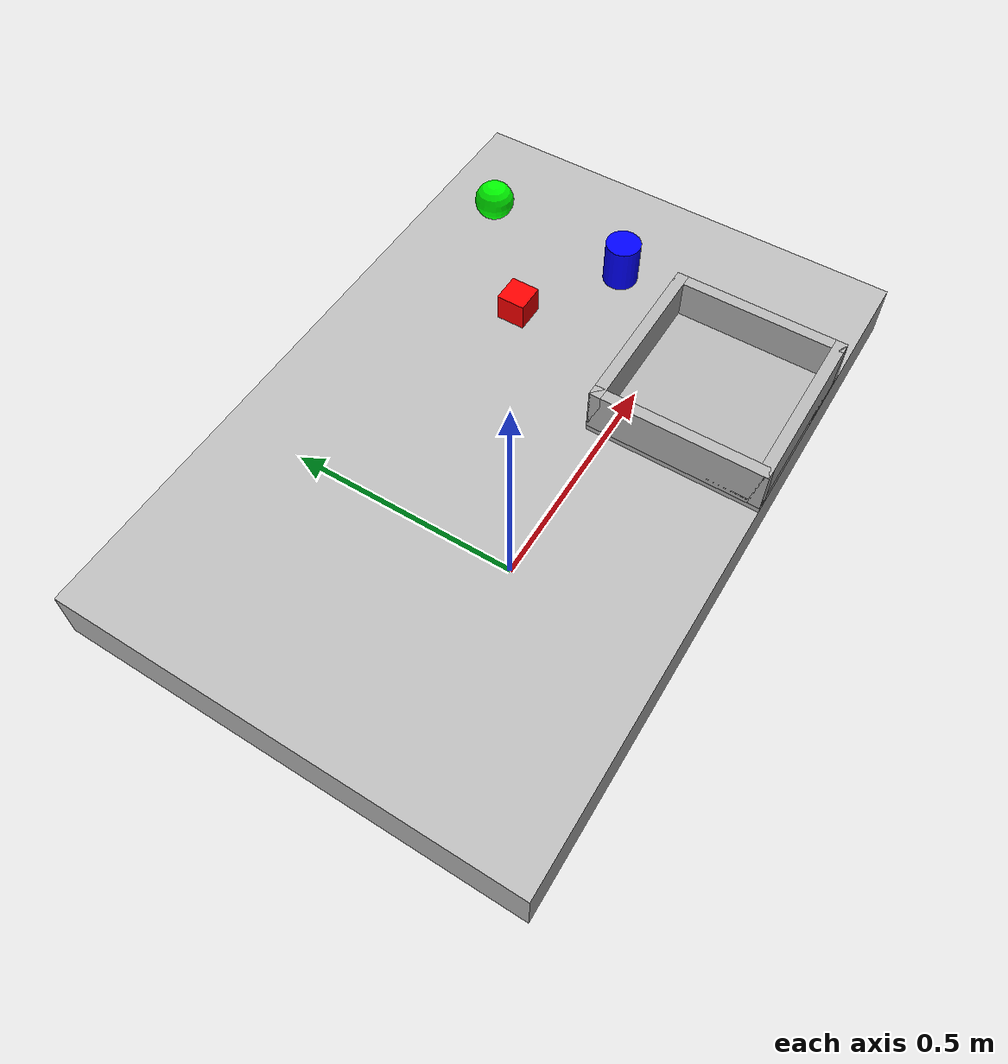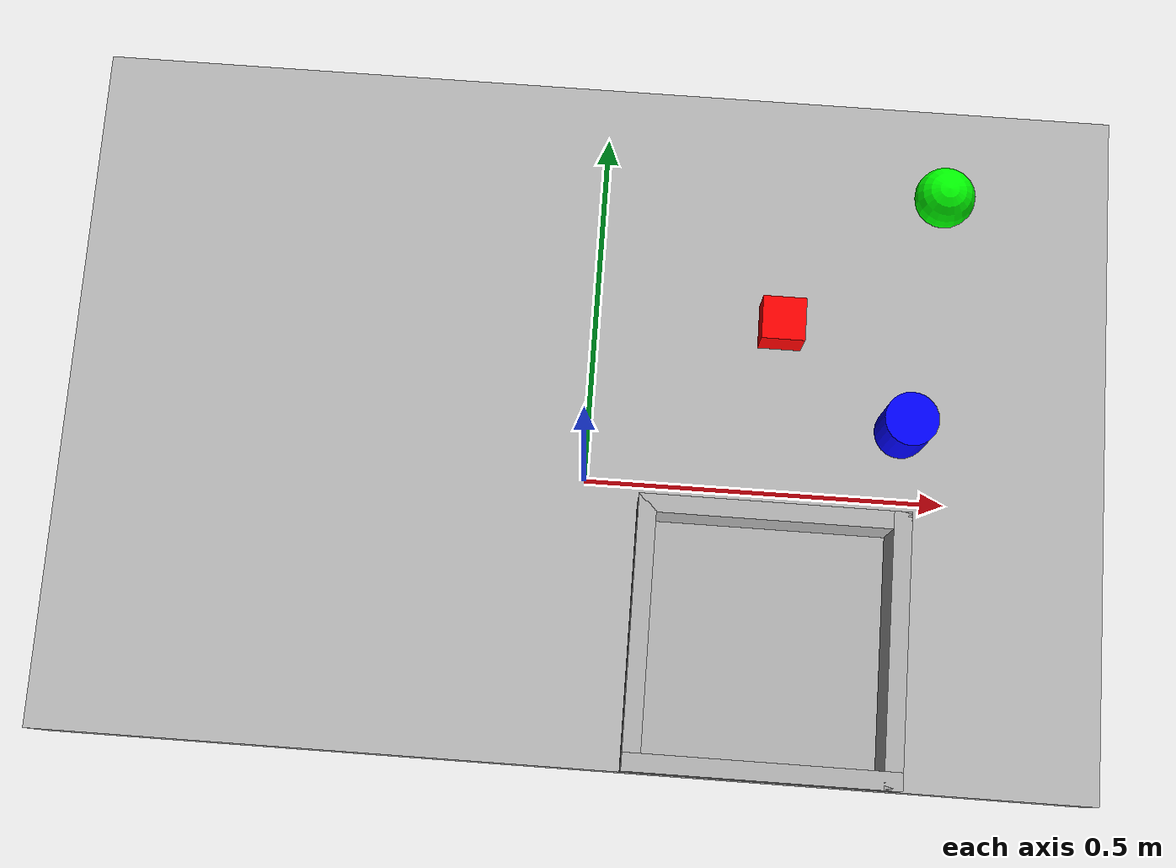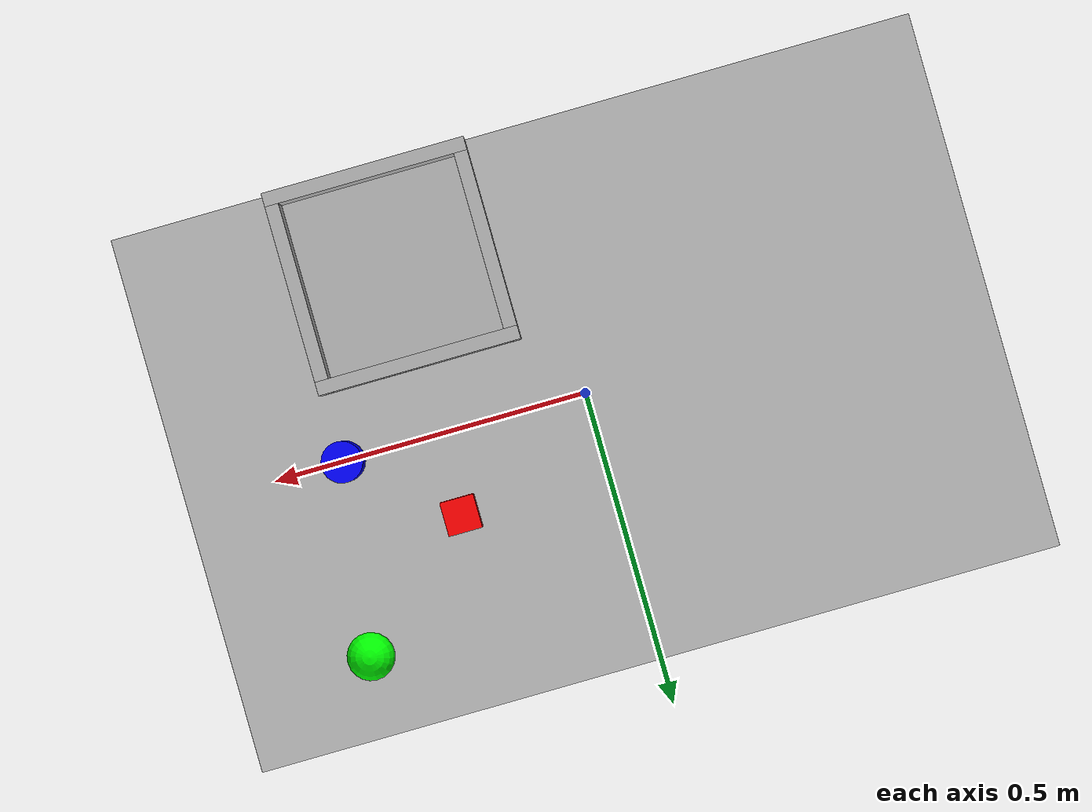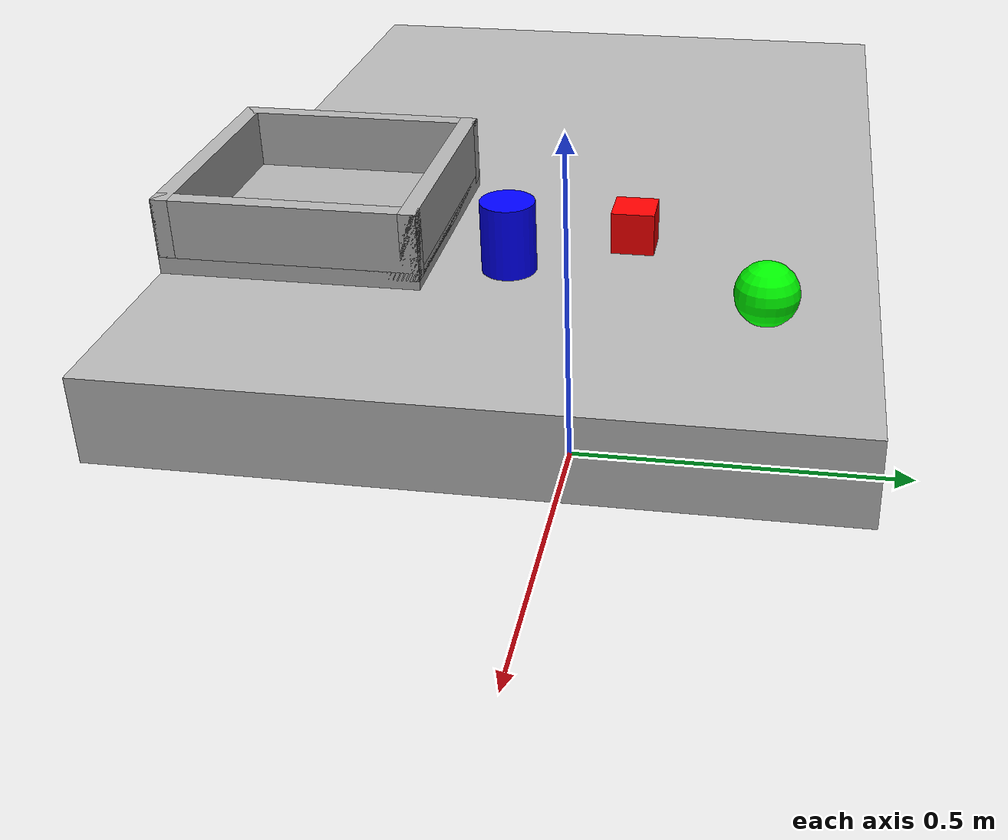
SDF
<?xml version="1.0" ?>
<sdf version="1.9">
  <world name="xh_p0_pick_place">
    <physics name="default_physics" type="bullet">
      <max_step_size>0.001</max_step_size>
      <real_time_factor>1.0</real_time_factor>
    </physics>
    <!-- Explicit systems are required for a server-only Harmonic run to expose
         physics, spawn services, contacts, the scene graph, and RGB-D output. -->
    <plugin name="gz::sim::systems::Physics" filename="gz-sim-physics-system">
      <engine><filename>gz-physics-bullet-featherstone-plugin</filename></engine>
    </plugin>
    <plugin name="gz::sim::systems::UserCommands" filename="gz-sim-user-commands-system"/>
    <plugin name="gz::sim::systems::SceneBroadcaster" filename="gz-sim-scene-broadcaster-system"/>
    <plugin name="gz::sim::systems::Contact" filename="gz-sim-contact-system"/>
    <plugin name="gz::sim::systems::Sensors" filename="gz-sim-sensors-system">
      <render_engine>ogre2</render_engine>
    </plugin>
    <gravity>0 0 -9.81</gravity>
    <light type="directional" name="sun">
      <pose>0 0 10 0 0 0</pose><cast_shadows>true</cast_shadows>
      <diffuse>0.8 0.8 0.8 1</diffuse><specular>0.2 0.2 0.2 1</specular>
      <direction>-0.5 0.1 -0.9</direction>
    </light>
    <model name="work_table">
      <static>true</static>
      <link name="table_link">
        <pose>0 0 0.4 0 0 0</pose>
        <collision name="collision"><geometry><box><size>1.2 0.8 0.1</size></box></geometry></collision>
        <visual name="visual"><geometry><box><size>1.2 0.8 0.1</size></box></geometry></visual>
      </link>
    </model>
    <!-- The M0 visual-only Panda stub was removed for M1A. The only robot
         rendered in this world is the controller-backed model spawned by launch. -->
    <model name="camera_fixture">
      <static>true</static>
      <link name="camera_rgbd">
        <pose>0.7 0 0.62 0 0.55 3.14</pose>
        <sensor name="front_rgbd" type="rgbd_camera">
          <always_on>1</always_on><update_rate>15</update_rate><topic>/xh/camera/rgbd</topic>
          <camera><horizontal_fov>1.047</horizontal_fov><image><width>320</width><height>240</height><format>R8G8B8</format></image><clip><near>0.1</near><far>4.0</far></clip></camera>
        </sensor>
      </link>
    </model>
    <model name="object_red_cube">
      <!-- Center is one half-side above the 0.45 m table top. This matches
           the MoveIt planning-scene object used by S0/S1. -->
      <pose>0.22 0.12 0.475 0 0 0</pose>
      <link name="link"><inertial><mass>0.08</mass></inertial><collision name="collision"><geometry><box><size>0.05 0.05 0.05</size></box></geometry></collision><visual name="visual"><geometry><box><size>0.05 0.05 0.05</size></box></geometry><material><diffuse>1 0 0 1</diffuse></material></visual><sensor name="red_cube_contact" type="contact"><always_on>1</always_on><update_rate>30</update_rate><topic>/xh/supervision/red_cube_contacts</topic><contact><collision>collision</collision></contact></sensor></link>
    </model>
    <model name="object_blue_cylinder">
      <pose>0.36 0.00 0.52 0 0 0</pose>
      <link name="link"><inertial><mass>0.06</mass></inertial><collision name="collision"><geometry><cylinder><radius>0.03</radius><length>0.08</length></cylinder></geometry></collision><visual name="visual"><geometry><cylinder><radius>0.03</radius><length>0.08</length></cylinder></geometry><material><diffuse>0 0 1 1</diffuse></material></visual></link>
    </model>
    <model name="object_green_sphere">
      <!-- The approved bin relocation would otherwise start with this
           non-task prop inside bin_a; keep it as a separate tabletop prop. -->
      <pose>0.40 0.28 0.49 0 0 0</pose>
      <link name="link"><inertial><mass>0.04</mass></inertial><collision name="collision"><geometry><sphere><radius>0.035</radius></sphere></geometry></collision><visual name="visual"><geometry><sphere><radius>0.035</radius></sphere></geometry><material><diffuse>0 1 0 1</diffuse></material></visual></link>
    </model>
    <model name="bin_a">
      <static>true</static><pose>0.217366447885 -0.249990627453 0.45 0 0 0</pose>
      <link name="link">
        <collision name="floor_collision"><pose>0 0 0.01 0 0 0</pose><geometry><box><size>0.30 0.30 0.02</size></box></geometry></collision>
        <visual name="floor_visual"><pose>0 0 0.01 0 0 0</pose><geometry><box><size>0.30 0.30 0.02</size></box></geometry><material><diffuse>0.7 0.7 0.7 1</diffuse></material></visual>
        <collision name="left_wall_collision"><pose>0 0.14 0.05 0 0 0</pose><geometry><box><size>0.30 0.02 0.08</size></box></geometry></collision>
        <collision name="right_wall_collision"><pose>0 -0.14 0.05 0 0 0</pose><geometry><box><size>0.30 0.02 0.08</size></box></geometry></collision>
        <collision name="front_wall_collision"><pose>0.14 0 0.05 0 0 0</pose><geometry><box><size>0.02 0.30 0.08</size></box></geometry></collision>
        <collision name="back_wall_collision"><pose>-0.14 0 0.05 0 0 0</pose><geometry><box><size>0.02 0.30 0.08</size></box></geometry></collision>
        <visual name="left_wall_visual"><pose>0 0.14 0.05 0 0 0</pose><geometry><box><size>0.30 0.02 0.08</size></box></geometry><material><diffuse>0.7 0.7 0.7 1</diffuse></material></visual>
        <visual name="right_wall_visual"><pose>0 -0.14 0.05 0 0 0</pose><geometry><box><size>0.30 0.02 0.08</size></box></geometry><material><diffuse>0.7 0.7 0.7 1</diffuse></material></visual>
        <visual name="front_wall_visual"><pose>0.14 0 0.05 0 0 0</pose><geometry><box><size>0.02 0.30 0.08</size></box></geometry><material><diffuse>0.7 0.7 0.7 1</diffuse></material></visual>
        <visual name="back_wall_visual"><pose>-0.14 0 0.05 0 0 0</pose><geometry><box><size>0.02 0.30 0.08</size></box></geometry><material><diffuse>0.7 0.7 0.7 1</diffuse></material></visual>
      </link>
    </model>
  </world>
</sdf>
